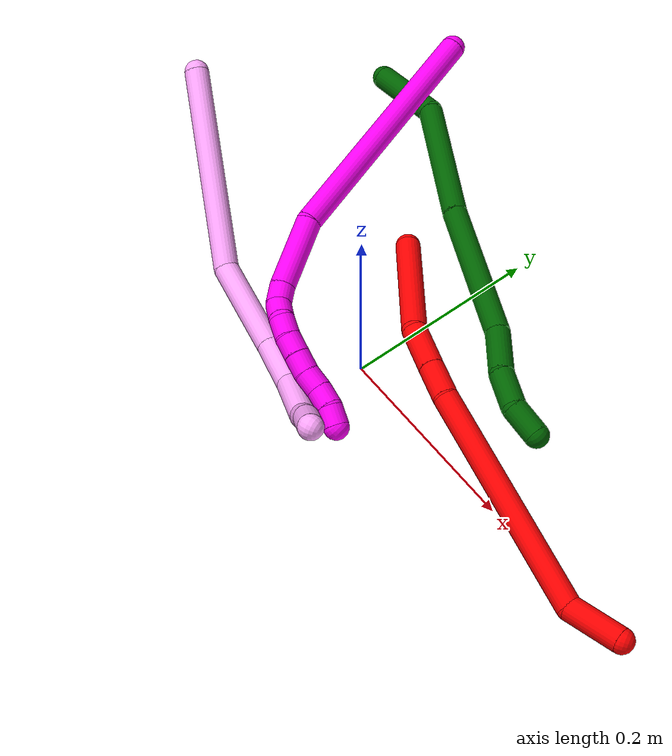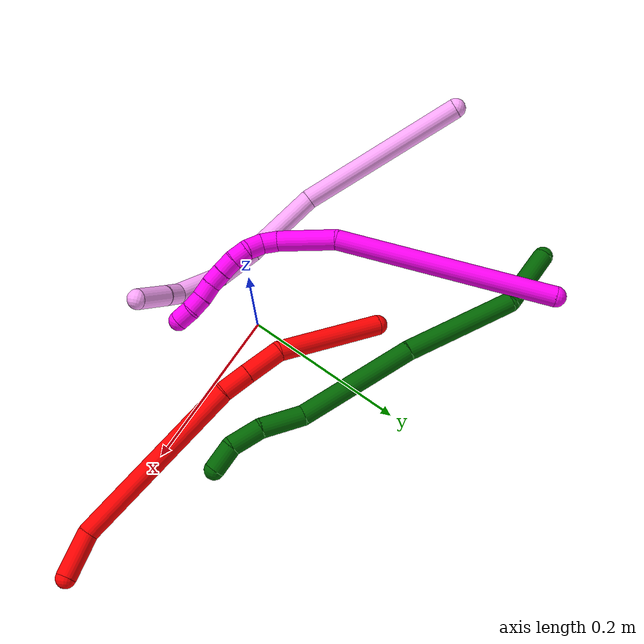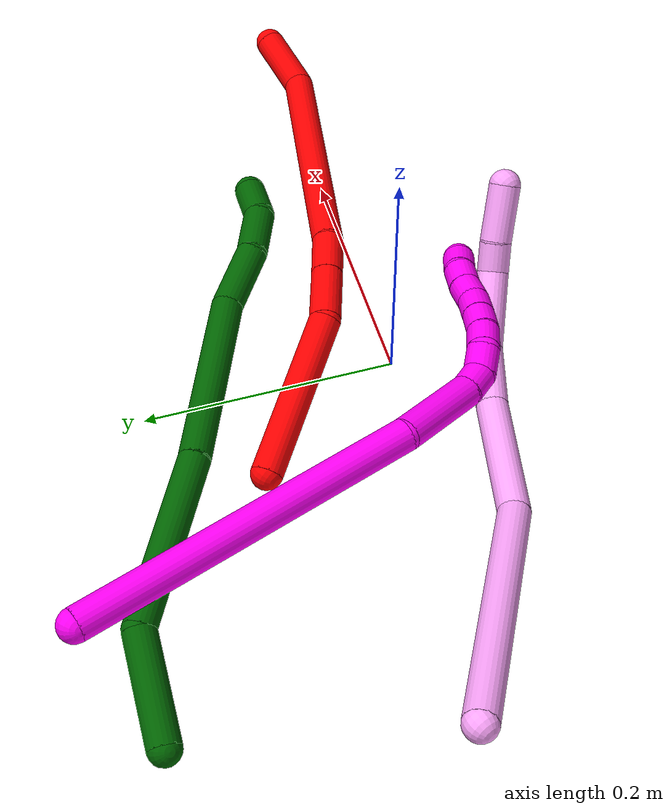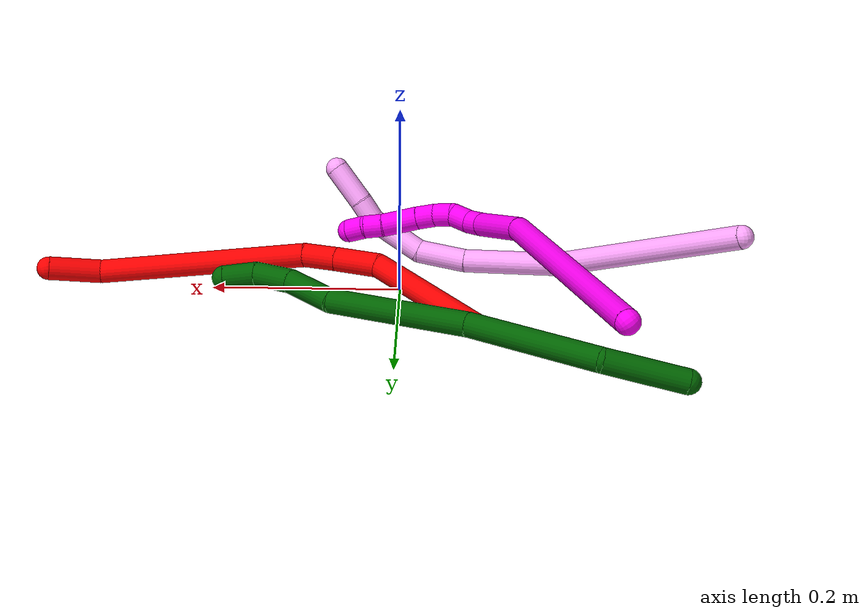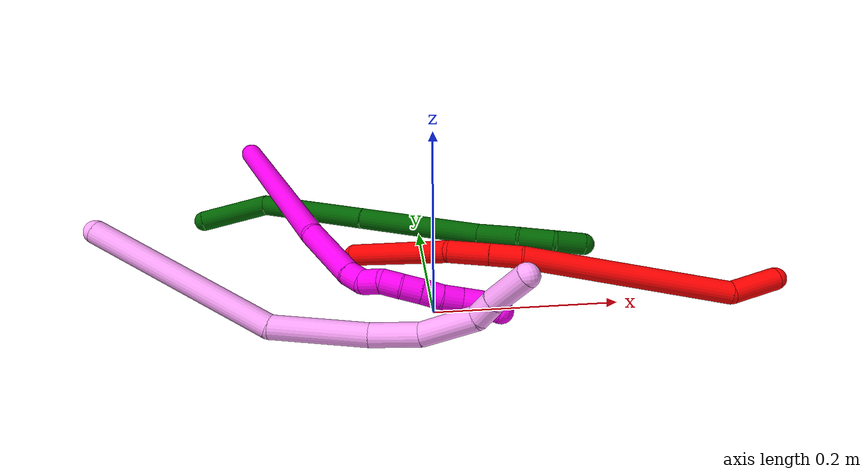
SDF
<sdf version="1.7">
 <world name="default">
  <model name="2">
   <static>0</static>
   <link name="2">
    <collision name="collision-cylinder-e_1_1_4">
     <pose>0.045548 -0.038793 -0.027961 2.19534 0.761074 1.32667</pose>
     <geometry><cylinder><radius>0.0125</radius><length>0.132081</length></cylinder></geometry>
     <surface>
      <friction><ode><mu>1.16</mu><mu2>1.16</mu2><slip1>0</slip1><slip2>0</slip2></ode></friction>
      <contact><ode><kp>1e+06</kp><kd>1</kd><max_vel>0</max_vel><min_depth>0.001</min_depth></ode></contact>
     </surface>
    </collision>
    <visual name="visual-cylinder-e_1_1_4">
     <pose>0.045548 -0.038793 -0.027961 2.19534 0.761074 1.32667</pose>
     <geometry><cylinder><radius>0.0125</radius><length>0.132081</length></cylinder></geometry>
     <material><ambient>1 0 0 1</ambient></material>
    </visual>
    <collision name="collision-cylinder-e_2_4_5">
     <pose>0.10037 -0.091372 -0.071939 2.43087 0.413554 1.02896</pose>
     <geometry><cylinder><radius>0.0125</radius><length>0.046156</length></cylinder></geometry>
     <surface>
      <friction><ode><mu>1.16</mu><mu2>1.16</mu2><slip1>0</slip1><slip2>0</slip2></ode></friction>
      <contact><ode><kp>1e+06</kp><kd>1</kd><max_vel>0</max_vel><min_depth>0.001</min_depth></ode></contact>
     </surface>
    </collision>
    <visual name="visual-cylinder-e_2_4_5">
     <pose>0.10037 -0.091372 -0.071939 2.43087 0.413554 1.02896</pose>
     <geometry><cylinder><radius>0.0125</radius><length>0.046156</length></cylinder></geometry>
     <material><ambient>1 0 0 1</ambient></material>
    </visual>
    <collision name="collision-cylinder-e_3_5_6">
     <pose>0.116458 -0.115717 -0.100481 2.44124 0.394107 1.00051</pose>
     <geometry><cylinder><radius>0.0125</radius><length>0.035487</length></cylinder></geometry>
     <surface>
      <friction><ode><mu>1.16</mu><mu2>1.16</mu2><slip1>0</slip1><slip2>0</slip2></ode></friction>
      <contact><ode><kp>1e+06</kp><kd>1</kd><max_vel>0</max_vel><min_depth>0.001</min_depth></ode></contact>
     </surface>
    </collision>
    <visual name="visual-cylinder-e_3_5_6">
     <pose>0.116458 -0.115717 -0.100481 2.44124 0.394107 1.00051</pose>
     <geometry><cylinder><radius>0.0125</radius><length>0.035487</length></cylinder></geometry>
     <material><ambient>1 0 0 1</ambient></material>
    </visual>
    <collision name="collision-cylinder-e_4_6_7">
     <pose>0.144912 -0.194094 -0.203033 2.49596 0.189698 0.554159</pose>
     <geometry><cylinder><radius>0.0125</radius><length>0.22954</length></cylinder></geometry>
     <surface>
      <friction><ode><mu>1.16</mu><mu2>1.16</mu2><slip1>0</slip1><slip2>0</slip2></ode></friction>
      <contact><ode><kp>1e+06</kp><kd>1</kd><max_vel>0</max_vel><min_depth>0.001</min_depth></ode></contact>
     </surface>
    </collision>
    <visual name="visual-cylinder-e_4_6_7">
     <pose>0.144912 -0.194094 -0.203033 2.49596 0.189698 0.554159</pose>
     <geometry><cylinder><radius>0.0125</radius><length>0.22954</length></cylinder></geometry>
     <material><ambient>1 0 0 1</ambient></material>
    </visual>
    <collision name="collision-cylinder-e_5_7_2">
     <pose>0.173831 -0.266074 -0.320159 2.98923 0.259439 2.08281</pose>
     <geometry><cylinder><radius>0.0125</radius><length>0.056737</length></cylinder></geometry>
     <surface>
      <friction><ode><mu>1.16</mu><mu2>1.16</mu2><slip1>0</slip1><slip2>0</slip2></ode></friction>
      <contact><ode><kp>1e+06</kp><kd>1</kd><max_vel>0</max_vel><min_depth>0.001</min_depth></ode></contact>
     </surface>
    </collision>
    <visual name="visual-cylinder-e_5_7_2">
     <pose>0.173831 -0.266074 -0.320159 2.98923 0.259439 2.08281</pose>
     <geometry><cylinder><radius>0.0125</radius><length>0.056737</length></cylinder></geometry>
     <material><ambient>1 0 0 1</ambient></material>
    </visual>
    <collision name="collision-sphere-2">
     <pose>0.181109 -0.270235 -0.347261 0 -0 0</pose>
     <geometry><sphere><radius>0.0125</radius></sphere></geometry>
     <surface>
      <friction><ode><mu>1.16</mu><mu2>1.16</mu2><slip1>0</slip1><slip2>0</slip2></ode></friction>
      <contact><ode><kp>1e+06</kp><kd>1</kd><max_vel>0</max_vel><min_depth>0.001</min_depth></ode></contact>
     </surface>
    </collision>
    <visual name="visual-sphere-2">
     <pose>0.181109 -0.270235 -0.347261 0 -0 0</pose>
     <geometry><sphere><radius>0.0125</radius></sphere></geometry>
     <material><ambient>1 0 0 1</ambient></material>
    </visual>
    <collision name="collision-sphere-7">
     <pose>0.166553 -0.261913 -0.293058 0 -0 0</pose>
     <geometry><sphere><radius>0.0125</radius></sphere></geometry>
     <surface>
      <friction><ode><mu>1.16</mu><mu2>1.16</mu2><slip1>0</slip1><slip2>0</slip2></ode></friction>
      <contact><ode><kp>1e+06</kp><kd>1</kd><max_vel>0</max_vel><min_depth>0.001</min_depth></ode></contact>
     </surface>
    </collision>
    <visual name="visual-sphere-7">
     <pose>0.166553 -0.261913 -0.293058 0 -0 0</pose>
     <geometry><sphere><radius>0.0125</radius></sphere></geometry>
     <material><ambient>1 0 0 1</ambient></material>
    </visual>
    <collision name="collision-sphere-6">
     <pose>0.123271 -0.126276 -0.113008 0 -0 0</pose>
     <geometry><sphere><radius>0.0125</radius></sphere></geometry>
     <surface>
      <friction><ode><mu>1.16</mu><mu2>1.16</mu2><slip1>0</slip1><slip2>0</slip2></ode></friction>
      <contact><ode><kp>1e+06</kp><kd>1</kd><max_vel>0</max_vel><min_depth>0.001</min_depth></ode></contact>
     </surface>
    </collision>
    <visual name="visual-sphere-6">
     <pose>0.123271 -0.126276 -0.113008 0 -0 0</pose>
     <geometry><sphere><radius>0.0125</radius></sphere></geometry>
     <material><ambient>1 0 0 1</ambient></material>
    </visual>
    <collision name="collision-sphere-5">
     <pose>0.109644 -0.105158 -0.087954 0 -0 0</pose>
     <geometry><sphere><radius>0.0125</radius></sphere></geometry>
     <surface>
      <friction><ode><mu>1.16</mu><mu2>1.16</mu2><slip1>0</slip1><slip2>0</slip2></ode></friction>
      <contact><ode><kp>1e+06</kp><kd>1</kd><max_vel>0</max_vel><min_depth>0.001</min_depth></ode></contact>
     </surface>
    </collision>
    <visual name="visual-sphere-5">
     <pose>0.109644 -0.105158 -0.087954 0 -0 0</pose>
     <geometry><sphere><radius>0.0125</radius></sphere></geometry>
     <material><ambient>1 0 0 1</ambient></material>
    </visual>
    <collision name="collision-sphere-1">
     <geometry><sphere><radius>0.0125</radius></sphere></geometry>
     <surface>
      <friction><ode><mu>1.16</mu><mu2>1.16</mu2><slip1>0</slip1><slip2>0</slip2></ode></friction>
      <contact><ode><kp>1e+06</kp><kd>1</kd><max_vel>0</max_vel><min_depth>0.001</min_depth></ode></contact>
     </surface>
    </collision>
    <visual name="visual-sphere-1">
     <geometry><sphere><radius>0.0125</radius></sphere></geometry>
     <material><ambient>1 0 0 1</ambient></material>
    </visual>
    <collision name="collision-sphere-4">
     <pose>0.091096 -0.077585 -0.055923 0 -0 0</pose>
     <geometry><sphere><radius>0.0125</radius></sphere></geometry>
     <surface>
      <friction><ode><mu>1.16</mu><mu2>1.16</mu2><slip1>0</slip1><slip2>0</slip2></ode></friction>
      <contact><ode><kp>1e+06</kp><kd>1</kd><max_vel>0</max_vel><min_depth>0.001</min_depth></ode></contact>
     </surface>
    </collision>
    <visual name="visual-sphere-4">
     <pose>0.091096 -0.077585 -0.055923 0 -0 0</pose>
     <geometry><sphere><radius>0.0125</radius></sphere></geometry>
     <material><ambient>1 0 0 1</ambient></material>
    </visual>
    <inertial>
     <pose>0.115814 -0.146192 -0.150697 0 -0 0</pose>
     <mass>0.5</mass>
     <inertia>
      <ixx>0.001587</ixx>
      <ixy>0</ixy>
      <ixz>0</ixz>
      <iyy>0.000125</iyy>
      <iyz>0</iyz>
      <izz>0.000363</izz>
     </inertia>
    </inertial>
   </link>
   <pose>-0.082043 0.123573 0.012476 1.5682 -1.00254 -1.08204</pose>
  </model>
  <model name="4">
   <static>0</static>
   <link name="4">
    <collision name="collision-cylinder-e_1_1_4">
     <pose>0.06943 -0.047461 -0.066941 2.52486 0.702227 1.71006</pose>
     <geometry><cylinder><radius>0.0125</radius><length>0.214981</length></cylinder></geometry>
     <surface>
      <friction><ode><mu>1.16</mu><mu2>1.16</mu2><slip1>0</slip1><slip2>0</slip2></ode></friction>
      <contact><ode><kp>1e+06</kp><kd>1</kd><max_vel>0</max_vel><min_depth>0.001</min_depth></ode></contact>
     </surface>
    </collision>
    <visual name="visual-cylinder-e_1_1_4">
     <pose>0.06943 -0.047461 -0.066941 2.52486 0.702227 1.71006</pose>
     <geometry><cylinder><radius>0.0125</radius><length>0.214981</length></cylinder></geometry>
     <material><ambient>1 0.65098 0.996078 1</ambient></material>
    </visual>
    <collision name="collision-cylinder-e_2_4_5">
     <pose>0.164417 -0.101709 -0.176482 2.98358 0.534853 2.579</pose>
     <geometry><cylinder><radius>0.0125</radius><length>0.100276</length></cylinder></geometry>
     <surface>
      <friction><ode><mu>1.16</mu><mu2>1.16</mu2><slip1>0</slip1><slip2>0</slip2></ode></friction>
      <contact><ode><kp>1e+06</kp><kd>1</kd><max_vel>0</max_vel><min_depth>0.001</min_depth></ode></contact>
     </surface>
    </collision>
    <visual name="visual-cylinder-e_2_4_5">
     <pose>0.164417 -0.101709 -0.176482 2.98358 0.534853 2.579</pose>
     <geometry><cylinder><radius>0.0125</radius><length>0.100276</length></cylinder></geometry>
     <material><ambient>1 0.65098 0.996078 1</ambient></material>
    </visual>
    <collision name="collision-cylinder-e_3_5_6">
     <pose>0.205377 -0.108451 -0.240307 -3.13945 0.627764 -3.13498</pose>
     <geometry><cylinder><radius>0.0125</radius><length>0.052455</length></cylinder></geometry>
     <surface>
      <friction><ode><mu>1.16</mu><mu2>1.16</mu2><slip1>0</slip1><slip2>0</slip2></ode></friction>
      <contact><ode><kp>1e+06</kp><kd>1</kd><max_vel>0</max_vel><min_depth>0.001</min_depth></ode></contact>
     </surface>
    </collision>
    <visual name="visual-cylinder-e_3_5_6">
     <pose>0.205377 -0.108451 -0.240307 -3.13945 0.627764 -3.13498</pose>
     <geometry><cylinder><radius>0.0125</radius><length>0.052455</length></cylinder></geometry>
     <material><ambient>1 0.65098 0.996078 1</ambient></material>
    </visual>
    <collision name="collision-cylinder-e_4_6_7">
     <pose>0.242166 -0.097955 -0.281722 -2.6639 0.754846 -2.03996</pose>
     <geometry><cylinder><radius>0.0125</radius><length>0.06242</length></cylinder></geometry>
     <surface>
      <friction><ode><mu>1.16</mu><mu2>1.16</mu2><slip1>0</slip1><slip2>0</slip2></ode></friction>
      <contact><ode><kp>1e+06</kp><kd>1</kd><max_vel>0</max_vel><min_depth>0.001</min_depth></ode></contact>
     </surface>
    </collision>
    <visual name="visual-cylinder-e_4_6_7">
     <pose>0.242166 -0.097955 -0.281722 -2.6639 0.754846 -2.03996</pose>
     <geometry><cylinder><radius>0.0125</radius><length>0.06242</length></cylinder></geometry>
     <material><ambient>1 0.65098 0.996078 1</ambient></material>
    </visual>
    <collision name="collision-cylinder-e_5_7_8">
     <pose>0.27037 -0.078663 -0.30734 -2.12161 0.581462 -0.982394</pose>
     <geometry><cylinder><radius>0.0125</radius><length>0.024832</length></cylinder></geometry>
     <surface>
      <friction><ode><mu>1.16</mu><mu2>1.16</mu2><slip1>0</slip1><slip2>0</slip2></ode></friction>
      <contact><ode><kp>1e+06</kp><kd>1</kd><max_vel>0</max_vel><min_depth>0.001</min_depth></ode></contact>
     </surface>
    </collision>
    <visual name="visual-cylinder-e_5_7_8">
     <pose>0.27037 -0.078663 -0.30734 -2.12161 0.581462 -0.982394</pose>
     <geometry><cylinder><radius>0.0125</radius><length>0.024832</length></cylinder></geometry>
     <material><ambient>1 0.65098 0.996078 1</ambient></material>
    </visual>
    <collision name="collision-cylinder-e_6_8_2">
     <pose>0.291604 -0.055678 -0.322732 -2.18439 0.694688 -1.21845</pose>
     <geometry><cylinder><radius>0.0125</radius><length>0.045036</length></cylinder></geometry>
     <surface>
      <friction><ode><mu>1.16</mu><mu2>1.16</mu2><slip1>0</slip1><slip2>0</slip2></ode></friction>
      <contact><ode><kp>1e+06</kp><kd>1</kd><max_vel>0</max_vel><min_depth>0.001</min_depth></ode></contact>
     </surface>
    </collision>
    <visual name="visual-cylinder-e_6_8_2">
     <pose>0.291604 -0.055678 -0.322732 -2.18439 0.694688 -1.21845</pose>
     <geometry><cylinder><radius>0.0125</radius><length>0.045036</length></cylinder></geometry>
     <material><ambient>1 0.65098 0.996078 1</ambient></material>
    </visual>
    <collision name="collision-sphere-2">
     <pose>0.306018 -0.041534 -0.332693 0 -0 0</pose>
     <geometry><sphere><radius>0.0125</radius></sphere></geometry>
     <surface>
      <friction><ode><mu>1.16</mu><mu2>1.16</mu2><slip1>0</slip1><slip2>0</slip2></ode></friction>
      <contact><ode><kp>1e+06</kp><kd>1</kd><max_vel>0</max_vel><min_depth>0.001</min_depth></ode></contact>
     </surface>
    </collision>
    <visual name="visual-sphere-2">
     <pose>0.306018 -0.041534 -0.332693 0 -0 0</pose>
     <geometry><sphere><radius>0.0125</radius></sphere></geometry>
     <material><ambient>1 0.65098 0.996078 1</ambient></material>
    </visual>
    <collision name="collision-sphere-4">
     <pose>0.138861 -0.094921 -0.133883 0 -0 0</pose>
     <geometry><sphere><radius>0.0125</radius></sphere></geometry>
     <surface>
      <friction><ode><mu>1.16</mu><mu2>1.16</mu2><slip1>0</slip1><slip2>0</slip2></ode></friction>
      <contact><ode><kp>1e+06</kp><kd>1</kd><max_vel>0</max_vel><min_depth>0.001</min_depth></ode></contact>
     </surface>
    </collision>
    <visual name="visual-sphere-4">
     <pose>0.138861 -0.094921 -0.133883 0 -0 0</pose>
     <geometry><sphere><radius>0.0125</radius></sphere></geometry>
     <material><ambient>1 0.65098 0.996078 1</ambient></material>
    </visual>
    <collision name="collision-sphere-1">
     <geometry><sphere><radius>0.0125</radius></sphere></geometry>
     <surface>
      <friction><ode><mu>1.16</mu><mu2>1.16</mu2><slip1>0</slip1><slip2>0</slip2></ode></friction>
      <contact><ode><kp>1e+06</kp><kd>1</kd><max_vel>0</max_vel><min_depth>0.001</min_depth></ode></contact>
     </surface>
    </collision>
    <visual name="visual-sphere-1">
     <geometry><sphere><radius>0.0125</radius></sphere></geometry>
     <material><ambient>1 0.65098 0.996078 1</ambient></material>
    </visual>
    <collision name="collision-sphere-8">
     <pose>0.277189 -0.069822 -0.31277 0 -0 0</pose>
     <geometry><sphere><radius>0.0125</radius></sphere></geometry>
     <surface>
      <friction><ode><mu>1.16</mu><mu2>1.16</mu2><slip1>0</slip1><slip2>0</slip2></ode></friction>
      <contact><ode><kp>1e+06</kp><kd>1</kd><max_vel>0</max_vel><min_depth>0.001</min_depth></ode></contact>
     </surface>
    </collision>
    <visual name="visual-sphere-8">
     <pose>0.277189 -0.069822 -0.31277 0 -0 0</pose>
     <geometry><sphere><radius>0.0125</radius></sphere></geometry>
     <material><ambient>1 0.65098 0.996078 1</ambient></material>
    </visual>
    <collision name="collision-sphere-5">
     <pose>0.189973 -0.108497 -0.21908 0 -0 0</pose>
     <geometry><sphere><radius>0.0125</radius></sphere></geometry>
     <surface>
      <friction><ode><mu>1.16</mu><mu2>1.16</mu2><slip1>0</slip1><slip2>0</slip2></ode></friction>
      <contact><ode><kp>1e+06</kp><kd>1</kd><max_vel>0</max_vel><min_depth>0.001</min_depth></ode></contact>
     </surface>
    </collision>
    <visual name="visual-sphere-5">
     <pose>0.189973 -0.108497 -0.21908 0 -0 0</pose>
     <geometry><sphere><radius>0.0125</radius></sphere></geometry>
     <material><ambient>1 0.65098 0.996078 1</ambient></material>
    </visual>
    <collision name="collision-sphere-6">
     <pose>0.220781 -0.108406 -0.261534 0 -0 0</pose>
     <geometry><sphere><radius>0.0125</radius></sphere></geometry>
     <surface>
      <friction><ode><mu>1.16</mu><mu2>1.16</mu2><slip1>0</slip1><slip2>0</slip2></ode></friction>
      <contact><ode><kp>1e+06</kp><kd>1</kd><max_vel>0</max_vel><min_depth>0.001</min_depth></ode></contact>
     </surface>
    </collision>
    <visual name="visual-sphere-6">
     <pose>0.220781 -0.108406 -0.261534 0 -0 0</pose>
     <geometry><sphere><radius>0.0125</radius></sphere></geometry>
     <material><ambient>1 0.65098 0.996078 1</ambient></material>
    </visual>
    <collision name="collision-sphere-7">
     <pose>0.26355 -0.087504 -0.30191 0 -0 0</pose>
     <geometry><sphere><radius>0.0125</radius></sphere></geometry>
     <surface>
      <friction><ode><mu>1.16</mu><mu2>1.16</mu2><slip1>0</slip1><slip2>0</slip2></ode></friction>
      <contact><ode><kp>1e+06</kp><kd>1</kd><max_vel>0</max_vel><min_depth>0.001</min_depth></ode></contact>
     </surface>
    </collision>
    <visual name="visual-sphere-7">
     <pose>0.26355 -0.087504 -0.30191 0 -0 0</pose>
     <geometry><sphere><radius>0.0125</radius></sphere></geometry>
     <material><ambient>1 0.65098 0.996078 1</ambient></material>
    </visual>
    <inertial>
     <pose>0.154297 -0.073332 -0.168889 0 -0 0</pose>
     <mass>0.5</mass>
     <inertia>
      <ixx>0.000505</ixx>
      <ixy>0</ixy>
      <ixz>0</ixz>
      <iyy>0.00116</iyy>
      <iyz>0</iyz>
      <izz>-0.000276</izz>
     </inertia>
    </inertial>
   </link>
   <pose>-0.347768 0.055142 0.086393 1.56895 -0.174569 -1.20448</pose>
  </model>
  <model name="6">
   <static>0</static>
   <link name="6">
    <collision name="collision-cylinder-e_1_1_4">
     <pose>0.032677 -0.018442 -0.017619 2.33339 0.908031 1.70249</pose>
     <geometry><cylinder><radius>0.0125</radius><length>0.082906</length></cylinder></geometry>
     <surface>
      <friction><ode><mu>1.16</mu><mu2>1.16</mu2><slip1>0</slip1><slip2>0</slip2></ode></friction>
      <contact><ode><kp>1e+06</kp><kd>1</kd><max_vel>0</max_vel><min_depth>0.001</min_depth></ode></contact>
     </surface>
    </collision>
    <visual name="visual-cylinder-e_1_1_4">
     <pose>0.032677 -0.018442 -0.017619 2.33339 0.908031 1.70249</pose>
     <geometry><cylinder><radius>0.0125</radius><length>0.082906</length></cylinder></geometry>
     <material><ambient>0 0.392157 0.003922 1</ambient></material>
    </visual>
    <collision name="collision-cylinder-e_2_4_5">
     <pose>0.095285 -0.093743 -0.064017 2.03934 0.439099 0.696495</pose>
     <geometry><cylinder><radius>0.0125</radius><length>0.140812</length></cylinder></geometry>
     <surface>
      <friction><ode><mu>1.16</mu><mu2>1.16</mu2><slip1>0</slip1><slip2>0</slip2></ode></friction>
      <contact><ode><kp>1e+06</kp><kd>1</kd><max_vel>0</max_vel><min_depth>0.001</min_depth></ode></contact>
     </surface>
    </collision>
    <visual name="visual-cylinder-e_2_4_5">
     <pose>0.095285 -0.093743 -0.064017 2.03934 0.439099 0.696495</pose>
     <geometry><cylinder><radius>0.0125</radius><length>0.140812</length></cylinder></geometry>
     <material><ambient>0 0.392157 0.003922 1</ambient></material>
    </visual>
    <collision name="collision-cylinder-e_3_5_6">
     <pose>0.159269 -0.205966 -0.129349 2.15433 0.474214 0.844238</pose>
     <geometry><cylinder><radius>0.0125</radius><length>0.149143</length></cylinder></geometry>
     <surface>
      <friction><ode><mu>1.16</mu><mu2>1.16</mu2><slip1>0</slip1><slip2>0</slip2></ode></friction>
      <contact><ode><kp>1e+06</kp><kd>1</kd><max_vel>0</max_vel><min_depth>0.001</min_depth></ode></contact>
     </surface>
    </collision>
    <visual name="visual-cylinder-e_3_5_6">
     <pose>0.159269 -0.205966 -0.129349 2.15433 0.474214 0.844238</pose>
     <geometry><cylinder><radius>0.0125</radius><length>0.149143</length></cylinder></geometry>
     <material><ambient>0 0.392157 0.003922 1</ambient></material>
    </visual>
    <collision name="collision-cylinder-e_4_6_7">
     <pose>0.20428 -0.284726 -0.17254 1.84725 0.423357 0.554074</pose>
     <geometry><cylinder><radius>0.0125</radius><length>0.053349</length></cylinder></geometry>
     <surface>
      <friction><ode><mu>1.16</mu><mu2>1.16</mu2><slip1>0</slip1><slip2>0</slip2></ode></friction>
      <contact><ode><kp>1e+06</kp><kd>1</kd><max_vel>0</max_vel><min_depth>0.001</min_depth></ode></contact>
     </surface>
    </collision>
    <visual name="visual-cylinder-e_4_6_7">
     <pose>0.20428 -0.284726 -0.17254 1.84725 0.423357 0.554074</pose>
     <geometry><cylinder><radius>0.0125</radius><length>0.053349</length></cylinder></geometry>
     <material><ambient>0 0.392157 0.003922 1</ambient></material>
    </visual>
    <collision name="collision-cylinder-e_5_7_8">
     <pose>0.224913 -0.323005 -0.188406 2.12586 0.504734 0.86775</pose>
     <geometry><cylinder><radius>0.0125</radius><length>0.040013</length></cylinder></geometry>
     <surface>
      <friction><ode><mu>1.16</mu><mu2>1.16</mu2><slip1>0</slip1><slip2>0</slip2></ode></friction>
      <contact><ode><kp>1e+06</kp><kd>1</kd><max_vel>0</max_vel><min_depth>0.001</min_depth></ode></contact>
     </surface>
    </collision>
    <visual name="visual-cylinder-e_5_7_8">
     <pose>0.224913 -0.323005 -0.188406 2.12586 0.504734 0.86775</pose>
     <geometry><cylinder><radius>0.0125</radius><length>0.040013</length></cylinder></geometry>
     <material><ambient>0 0.392157 0.003922 1</ambient></material>
    </visual>
    <collision name="collision-cylinder-e_6_8_2">
     <pose>0.24387 -0.345079 -0.209774 2.60674 0.581884 1.65949</pose>
     <geometry><cylinder><radius>0.0125</radius><length>0.033778</length></cylinder></geometry>
     <surface>
      <friction><ode><mu>1.16</mu><mu2>1.16</mu2><slip1>0</slip1><slip2>0</slip2></ode></friction>
      <contact><ode><kp>1e+06</kp><kd>1</kd><max_vel>0</max_vel><min_depth>0.001</min_depth></ode></contact>
     </surface>
    </collision>
    <visual name="visual-cylinder-e_6_8_2">
     <pose>0.24387 -0.345079 -0.209774 2.60674 0.581884 1.65949</pose>
     <geometry><cylinder><radius>0.0125</radius><length>0.033778</length></cylinder></geometry>
     <material><ambient>0 0.392157 0.003922 1</ambient></material>
    </visual>
    <collision name="collision-sphere-2">
     <pose>0.253152 -0.352271 -0.221913 0 -0 0</pose>
     <geometry><sphere><radius>0.0125</radius></sphere></geometry>
     <surface>
      <friction><ode><mu>1.16</mu><mu2>1.16</mu2><slip1>0</slip1><slip2>0</slip2></ode></friction>
      <contact><ode><kp>1e+06</kp><kd>1</kd><max_vel>0</max_vel><min_depth>0.001</min_depth></ode></contact>
     </surface>
    </collision>
    <visual name="visual-sphere-2">
     <pose>0.253152 -0.352271 -0.221913 0 -0 0</pose>
     <geometry><sphere><radius>0.0125</radius></sphere></geometry>
     <material><ambient>0 0.392157 0.003922 1</ambient></material>
    </visual>
    <collision name="collision-sphere-4">
     <pose>0.065354 -0.036884 -0.035239 0 -0 0</pose>
     <geometry><sphere><radius>0.0125</radius></sphere></geometry>
     <surface>
      <friction><ode><mu>1.16</mu><mu2>1.16</mu2><slip1>0</slip1><slip2>0</slip2></ode></friction>
      <contact><ode><kp>1e+06</kp><kd>1</kd><max_vel>0</max_vel><min_depth>0.001</min_depth></ode></contact>
     </surface>
    </collision>
    <visual name="visual-sphere-4">
     <pose>0.065354 -0.036884 -0.035239 0 -0 0</pose>
     <geometry><sphere><radius>0.0125</radius></sphere></geometry>
     <material><ambient>0 0.392157 0.003922 1</ambient></material>
    </visual>
    <collision name="collision-sphere-1">
     <geometry><sphere><radius>0.0125</radius></sphere></geometry>
     <surface>
      <friction><ode><mu>1.16</mu><mu2>1.16</mu2><slip1>0</slip1><slip2>0</slip2></ode></friction>
      <contact><ode><kp>1e+06</kp><kd>1</kd><max_vel>0</max_vel><min_depth>0.001</min_depth></ode></contact>
     </surface>
    </collision>
    <visual name="visual-sphere-1">
     <geometry><sphere><radius>0.0125</radius></sphere></geometry>
     <material><ambient>0 0.392157 0.003922 1</ambient></material>
    </visual>
    <collision name="collision-sphere-8">
     <pose>0.234587 -0.337887 -0.197635 0 -0 0</pose>
     <geometry><sphere><radius>0.0125</radius></sphere></geometry>
     <surface>
      <friction><ode><mu>1.16</mu><mu2>1.16</mu2><slip1>0</slip1><slip2>0</slip2></ode></friction>
      <contact><ode><kp>1e+06</kp><kd>1</kd><max_vel>0</max_vel><min_depth>0.001</min_depth></ode></contact>
     </surface>
    </collision>
    <visual name="visual-sphere-8">
     <pose>0.234587 -0.337887 -0.197635 0 -0 0</pose>
     <geometry><sphere><radius>0.0125</radius></sphere></geometry>
     <material><ambient>0 0.392157 0.003922 1</ambient></material>
    </visual>
    <collision name="collision-sphere-5">
     <pose>0.125217 -0.150602 -0.092796 0 -0 0</pose>
     <geometry><sphere><radius>0.0125</radius></sphere></geometry>
     <surface>
      <friction><ode><mu>1.16</mu><mu2>1.16</mu2><slip1>0</slip1><slip2>0</slip2></ode></friction>
      <contact><ode><kp>1e+06</kp><kd>1</kd><max_vel>0</max_vel><min_depth>0.001</min_depth></ode></contact>
     </surface>
    </collision>
    <visual name="visual-sphere-5">
     <pose>0.125217 -0.150602 -0.092796 0 -0 0</pose>
     <geometry><sphere><radius>0.0125</radius></sphere></geometry>
     <material><ambient>0 0.392157 0.003922 1</ambient></material>
    </visual>
    <collision name="collision-sphere-6">
     <pose>0.193321 -0.26133 -0.165902 0 -0 0</pose>
     <geometry><sphere><radius>0.0125</radius></sphere></geometry>
     <surface>
      <friction><ode><mu>1.16</mu><mu2>1.16</mu2><slip1>0</slip1><slip2>0</slip2></ode></friction>
      <contact><ode><kp>1e+06</kp><kd>1</kd><max_vel>0</max_vel><min_depth>0.001</min_depth></ode></contact>
     </surface>
    </collision>
    <visual name="visual-sphere-6">
     <pose>0.193321 -0.26133 -0.165902 0 -0 0</pose>
     <geometry><sphere><radius>0.0125</radius></sphere></geometry>
     <material><ambient>0 0.392157 0.003922 1</ambient></material>
    </visual>
    <collision name="collision-sphere-7">
     <pose>0.215238 -0.308122 -0.179178 0 -0 0</pose>
     <geometry><sphere><radius>0.0125</radius></sphere></geometry>
     <surface>
      <friction><ode><mu>1.16</mu><mu2>1.16</mu2><slip1>0</slip1><slip2>0</slip2></ode></friction>
      <contact><ode><kp>1e+06</kp><kd>1</kd><max_vel>0</max_vel><min_depth>0.001</min_depth></ode></contact>
     </surface>
    </collision>
    <visual name="visual-sphere-7">
     <pose>0.215238 -0.308122 -0.179178 0 -0 0</pose>
     <geometry><sphere><radius>0.0125</radius></sphere></geometry>
     <material><ambient>0 0.392157 0.003922 1</ambient></material>
    </visual>
    <inertial>
     <pose>0.13603 -0.170435 -0.107192 0 -0 0</pose>
     <mass>0.5</mass>
     <inertia>
      <ixx>0.000735</ixx>
      <ixy>0</ixy>
      <ixz>0</ixz>
      <iyy>0.000332</iyy>
      <iyz>0</iyz>
      <izz>0.000145</izz>
     </inertia>
    </inertial>
   </link>
   <pose>-0.274851 0.244439 0.013411 -0.090306 -0.723849 0.495674</pose>
  </model>
  <model name="10">
   <static>0</static>
   <link name="10">
    <collision name="collision-cylinder-e_1_1_4">
     <pose>0.051598 -0.122791 -0.00495 1.61109 0.397516 0.41341</pose>
     <geometry><cylinder><radius>0.0125</radius><length>0.266568</length></cylinder></geometry>
     <surface>
      <friction><ode><mu>1.16</mu><mu2>1.16</mu2><slip1>0</slip1><slip2>0</slip2></ode></friction>
      <contact><ode><kp>1e+06</kp><kd>1</kd><max_vel>0</max_vel><min_depth>0.001</min_depth></ode></contact>
     </surface>
    </collision>
    <visual name="visual-cylinder-e_1_1_4">
     <pose>0.051598 -0.122791 -0.00495 1.61109 0.397516 0.41341</pose>
     <geometry><cylinder><radius>0.0125</radius><length>0.266568</length></cylinder></geometry>
     <material><ambient>1 0 0.964706 1</ambient></material>
    </visual>
    <collision name="collision-cylinder-e_2_4_5">
     <pose>0.114005 -0.277844 -0.021728 1.92222 0.304771 0.432873</pose>
     <geometry><cylinder><radius>0.0125</radius><length>0.072043</length></cylinder></geometry>
     <surface>
      <friction><ode><mu>1.16</mu><mu2>1.16</mu2><slip1>0</slip1><slip2>0</slip2></ode></friction>
      <contact><ode><kp>1e+06</kp><kd>1</kd><max_vel>0</max_vel><min_depth>0.001</min_depth></ode></contact>
     </surface>
    </collision>
    <visual name="visual-cylinder-e_2_4_5">
     <pose>0.114005 -0.277844 -0.021728 1.92222 0.304771 0.432873</pose>
     <geometry><cylinder><radius>0.0125</radius><length>0.072043</length></cylinder></geometry>
     <material><ambient>1 0 0.964706 1</ambient></material>
    </visual>
    <collision name="collision-cylinder-e_3_5_6">
     <pose>0.129618 -0.318116 -0.037816 2.0595 0.486975 0.784074</pose>
     <geometry><cylinder><radius>0.0125</radius><length>0.020533</length></cylinder></geometry>
     <surface>
      <friction><ode><mu>1.16</mu><mu2>1.16</mu2><slip1>0</slip1><slip2>0</slip2></ode></friction>
      <contact><ode><kp>1e+06</kp><kd>1</kd><max_vel>0</max_vel><min_depth>0.001</min_depth></ode></contact>
     </surface>
    </collision>
    <visual name="visual-cylinder-e_3_5_6">
     <pose>0.129618 -0.318116 -0.037816 2.0595 0.486975 0.784074</pose>
     <geometry><cylinder><radius>0.0125</radius><length>0.020533</length></cylinder></geometry>
     <material><ambient>1 0 0.964706 1</ambient></material>
    </visual>
    <collision name="collision-cylinder-e_4_6_7">
     <pose>0.142571 -0.330395 -0.046916 2.41891 0.901005 1.81502</pose>
     <geometry><cylinder><radius>0.0125</radius><length>0.020789</length></cylinder></geometry>
     <surface>
      <friction><ode><mu>1.16</mu><mu2>1.16</mu2><slip1>0</slip1><slip2>0</slip2></ode></friction>
      <contact><ode><kp>1e+06</kp><kd>1</kd><max_vel>0</max_vel><min_depth>0.001</min_depth></ode></contact>
     </surface>
    </collision>
    <visual name="visual-cylinder-e_4_6_7">
     <pose>0.142571 -0.330395 -0.046916 2.41891 0.901005 1.81502</pose>
     <geometry><cylinder><radius>0.0125</radius><length>0.020789</length></cylinder></geometry>
     <material><ambient>1 0 0.964706 1</ambient></material>
    </visual>
    <collision name="collision-cylinder-e_5_7_8">
     <pose>0.155752 -0.339007 -0.059266 2.61725 0.525647 1.5734</pose>
     <geometry><cylinder><radius>0.0125</radius><length>0.020058</length></cylinder></geometry>
     <surface>
      <friction><ode><mu>1.16</mu><mu2>1.16</mu2><slip1>0</slip1><slip2>0</slip2></ode></friction>
      <contact><ode><kp>1e+06</kp><kd>1</kd><max_vel>0</max_vel><min_depth>0.001</min_depth></ode></contact>
     </surface>
    </collision>
    <visual name="visual-cylinder-e_5_7_8">
     <pose>0.155752 -0.339007 -0.059266 2.61725 0.525647 1.5734</pose>
     <geometry><cylinder><radius>0.0125</radius><length>0.020058</length></cylinder></geometry>
     <material><ambient>1 0 0.964706 1</ambient></material>
    </visual>
    <collision name="collision-cylinder-e_6_8_9">
     <pose>0.165046 -0.34648 -0.075267 2.78841 0.440049 1.79465</pose>
     <geometry><cylinder><radius>0.0125</radius><length>0.020005</length></cylinder></geometry>
     <surface>
      <friction><ode><mu>1.16</mu><mu2>1.16</mu2><slip1>0</slip1><slip2>0</slip2></ode></friction>
      <contact><ode><kp>1e+06</kp><kd>1</kd><max_vel>0</max_vel><min_depth>0.001</min_depth></ode></contact>
     </surface>
    </collision>
    <visual name="visual-cylinder-e_6_8_9">
     <pose>0.165046 -0.34648 -0.075267 2.78841 0.440049 1.79465</pose>
     <geometry><cylinder><radius>0.0125</radius><length>0.020005</length></cylinder></geometry>
     <material><ambient>1 0 0.964706 1</ambient></material>
    </visual>
    <collision name="collision-cylinder-e_7_9_10">
     <pose>0.173047 -0.352718 -0.092497 2.79994 0.383298 1.68811</pose>
     <geometry><cylinder><radius>0.0125</radius><length>0.020003</length></cylinder></geometry>
     <surface>
      <friction><ode><mu>1.16</mu><mu2>1.16</mu2><slip1>0</slip1><slip2>0</slip2></ode></friction>
      <contact><ode><kp>1e+06</kp><kd>1</kd><max_vel>0</max_vel><min_depth>0.001</min_depth></ode></contact>
     </surface>
    </collision>
    <visual name="visual-cylinder-e_7_9_10">
     <pose>0.173047 -0.352718 -0.092497 2.79994 0.383298 1.68811</pose>
     <geometry><cylinder><radius>0.0125</radius><length>0.020003</length></cylinder></geometry>
     <material><ambient>1 0 0.964706 1</ambient></material>
    </visual>
    <collision name="collision-cylinder-e_8_10_11">
     <pose>0.180827 -0.357268 -0.110271 2.98325 0.415854 2.42221</pose>
     <geometry><cylinder><radius>0.0125</radius><length>0.020001</length></cylinder></geometry>
     <surface>
      <friction><ode><mu>1.16</mu><mu2>1.16</mu2><slip1>0</slip1><slip2>0</slip2></ode></friction>
      <contact><ode><kp>1e+06</kp><kd>1</kd><max_vel>0</max_vel><min_depth>0.001</min_depth></ode></contact>
     </surface>
    </collision>
    <visual name="visual-cylinder-e_8_10_11">
     <pose>0.180827 -0.357268 -0.110271 2.98325 0.415854 2.42221</pose>
     <geometry><cylinder><radius>0.0125</radius><length>0.020001</length></cylinder></geometry>
     <material><ambient>1 0 0.964706 1</ambient></material>
    </visual>
    <collision name="collision-cylinder-e_9_11_12">
     <pose>0.189719 -0.361196 -0.127688 2.85344 0.506552 2.11984</pose>
     <geometry><cylinder><radius>0.0125</radius><length>0.02</length></cylinder></geometry>
     <surface>
      <friction><ode><mu>1.16</mu><mu2>1.16</mu2><slip1>0</slip1><slip2>0</slip2></ode></friction>
      <contact><ode><kp>1e+06</kp><kd>1</kd><max_vel>0</max_vel><min_depth>0.001</min_depth></ode></contact>
     </surface>
    </collision>
    <visual name="visual-cylinder-e_9_11_12">
     <pose>0.189719 -0.361196 -0.127688 2.85344 0.506552 2.11984</pose>
     <geometry><cylinder><radius>0.0125</radius><length>0.02</length></cylinder></geometry>
     <material><ambient>1 0 0.964706 1</ambient></material>
    </visual>
    <collision name="collision-cylinder-e_10_12_2">
     <pose>0.197902 -0.368188 -0.144353 2.64313 0.339639 1.18571</pose>
     <geometry><cylinder><radius>0.0125</radius><length>0.020001</length></cylinder></geometry>
     <surface>
      <friction><ode><mu>1.16</mu><mu2>1.16</mu2><slip1>0</slip1><slip2>0</slip2></ode></friction>
      <contact><ode><kp>1e+06</kp><kd>1</kd><max_vel>0</max_vel><min_depth>0.001</min_depth></ode></contact>
     </surface>
    </collision>
    <visual name="visual-cylinder-e_10_12_2">
     <pose>0.197902 -0.368188 -0.144353 2.64313 0.339639 1.18571</pose>
     <geometry><cylinder><radius>0.0125</radius><length>0.020001</length></cylinder></geometry>
     <material><ambient>1 0 0.964706 1</ambient></material>
    </visual>
    <collision name="collision-sphere-2">
     <pose>0.201234 -0.372696 -0.152635 0 -0 0</pose>
     <geometry><sphere><radius>0.0125</radius></sphere></geometry>
     <surface>
      <friction><ode><mu>1.16</mu><mu2>1.16</mu2><slip1>0</slip1><slip2>0</slip2></ode></friction>
      <contact><ode><kp>1e+06</kp><kd>1</kd><max_vel>0</max_vel><min_depth>0.001</min_depth></ode></contact>
     </surface>
    </collision>
    <visual name="visual-sphere-2">
     <pose>0.201234 -0.372696 -0.152635 0 -0 0</pose>
     <geometry><sphere><radius>0.0125</radius></sphere></geometry>
     <material><ambient>1 0 0.964706 1</ambient></material>
    </visual>
    <collision name="collision-sphere-12">
     <pose>0.19457 -0.36368 -0.136072 0 -0 0</pose>
     <geometry><sphere><radius>0.0125</radius></sphere></geometry>
     <surface>
      <friction><ode><mu>1.16</mu><mu2>1.16</mu2><slip1>0</slip1><slip2>0</slip2></ode></friction>
      <contact><ode><kp>1e+06</kp><kd>1</kd><max_vel>0</max_vel><min_depth>0.001</min_depth></ode></contact>
     </surface>
    </collision>
    <visual name="visual-sphere-12">
     <pose>0.19457 -0.36368 -0.136072 0 -0 0</pose>
     <geometry><sphere><radius>0.0125</radius></sphere></geometry>
     <material><ambient>1 0 0.964706 1</ambient></material>
    </visual>
    <collision name="collision-sphere-11">
     <pose>0.184867 -0.358711 -0.119304 0 -0 0</pose>
     <geometry><sphere><radius>0.0125</radius></sphere></geometry>
     <surface>
      <friction><ode><mu>1.16</mu><mu2>1.16</mu2><slip1>0</slip1><slip2>0</slip2></ode></friction>
      <contact><ode><kp>1e+06</kp><kd>1</kd><max_vel>0</max_vel><min_depth>0.001</min_depth></ode></contact>
     </surface>
    </collision>
    <visual name="visual-sphere-11">
     <pose>0.184867 -0.358711 -0.119304 0 -0 0</pose>
     <geometry><sphere><radius>0.0125</radius></sphere></geometry>
     <material><ambient>1 0 0.964706 1</ambient></material>
    </visual>
    <collision name="collision-sphere-10">
     <pose>0.176787 -0.355826 -0.101237 0 -0 0</pose>
     <geometry><sphere><radius>0.0125</radius></sphere></geometry>
     <surface>
      <friction><ode><mu>1.16</mu><mu2>1.16</mu2><slip1>0</slip1><slip2>0</slip2></ode></friction>
      <contact><ode><kp>1e+06</kp><kd>1</kd><max_vel>0</max_vel><min_depth>0.001</min_depth></ode></contact>
     </surface>
    </collision>
    <visual name="visual-sphere-10">
     <pose>0.176787 -0.355826 -0.101237 0 -0 0</pose>
     <geometry><sphere><radius>0.0125</radius></sphere></geometry>
     <material><ambient>1 0 0.964706 1</ambient></material>
    </visual>
    <collision name="collision-sphere-9">
     <pose>0.169307 -0.34961 -0.083758 0 -0 0</pose>
     <geometry><sphere><radius>0.0125</radius></sphere></geometry>
     <surface>
      <friction><ode><mu>1.16</mu><mu2>1.16</mu2><slip1>0</slip1><slip2>0</slip2></ode></friction>
      <contact><ode><kp>1e+06</kp><kd>1</kd><max_vel>0</max_vel><min_depth>0.001</min_depth></ode></contact>
     </surface>
    </collision>
    <visual name="visual-sphere-9">
     <pose>0.169307 -0.34961 -0.083758 0 -0 0</pose>
     <geometry><sphere><radius>0.0125</radius></sphere></geometry>
     <material><ambient>1 0 0.964706 1</ambient></material>
    </visual>
    <collision name="collision-sphere-4">
     <pose>0.103196 -0.245583 -0.0099 0 -0 0</pose>
     <geometry><sphere><radius>0.0125</radius></sphere></geometry>
     <surface>
      <friction><ode><mu>1.16</mu><mu2>1.16</mu2><slip1>0</slip1><slip2>0</slip2></ode></friction>
      <contact><ode><kp>1e+06</kp><kd>1</kd><max_vel>0</max_vel><min_depth>0.001</min_depth></ode></contact>
     </surface>
    </collision>
    <visual name="visual-sphere-4">
     <pose>0.103196 -0.245583 -0.0099 0 -0 0</pose>
     <geometry><sphere><radius>0.0125</radius></sphere></geometry>
     <material><ambient>1 0 0.964706 1</ambient></material>
    </visual>
    <collision name="collision-sphere-1">
     <geometry><sphere><radius>0.0125</radius></sphere></geometry>
     <surface>
      <friction><ode><mu>1.16</mu><mu2>1.16</mu2><slip1>0</slip1><slip2>0</slip2></ode></friction>
      <contact><ode><kp>1e+06</kp><kd>1</kd><max_vel>0</max_vel><min_depth>0.001</min_depth></ode></contact>
     </surface>
    </collision>
    <visual name="visual-sphere-1">
     <geometry><sphere><radius>0.0125</radius></sphere></geometry>
     <material><ambient>1 0 0.964706 1</ambient></material>
    </visual>
    <collision name="collision-sphere-8">
     <pose>0.160785 -0.34335 -0.066776 0 -0 0</pose>
     <geometry><sphere><radius>0.0125</radius></sphere></geometry>
     <surface>
      <friction><ode><mu>1.16</mu><mu2>1.16</mu2><slip1>0</slip1><slip2>0</slip2></ode></friction>
      <contact><ode><kp>1e+06</kp><kd>1</kd><max_vel>0</max_vel><min_depth>0.001</min_depth></ode></contact>
     </surface>
    </collision>
    <visual name="visual-sphere-8">
     <pose>0.160785 -0.34335 -0.066776 0 -0 0</pose>
     <geometry><sphere><radius>0.0125</radius></sphere></geometry>
     <material><ambient>1 0 0.964706 1</ambient></material>
    </visual>
    <collision name="collision-sphere-5">
     <pose>0.124814 -0.310105 -0.033557 0 -0 0</pose>
     <geometry><sphere><radius>0.0125</radius></sphere></geometry>
     <surface>
      <friction><ode><mu>1.16</mu><mu2>1.16</mu2><slip1>0</slip1><slip2>0</slip2></ode></friction>
      <contact><ode><kp>1e+06</kp><kd>1</kd><max_vel>0</max_vel><min_depth>0.001</min_depth></ode></contact>
     </surface>
    </collision>
    <visual name="visual-sphere-5">
     <pose>0.124814 -0.310105 -0.033557 0 -0 0</pose>
     <geometry><sphere><radius>0.0125</radius></sphere></geometry>
     <material><ambient>1 0 0.964706 1</ambient></material>
    </visual>
    <collision name="collision-sphere-6">
     <pose>0.134423 -0.326127 -0.042076 0 -0 0</pose>
     <geometry><sphere><radius>0.0125</radius></sphere></geometry>
     <surface>
      <friction><ode><mu>1.16</mu><mu2>1.16</mu2><slip1>0</slip1><slip2>0</slip2></ode></friction>
      <contact><ode><kp>1e+06</kp><kd>1</kd><max_vel>0</max_vel><min_depth>0.001</min_depth></ode></contact>
     </surface>
    </collision>
    <visual name="visual-sphere-6">
     <pose>0.134423 -0.326127 -0.042076 0 -0 0</pose>
     <geometry><sphere><radius>0.0125</radius></sphere></geometry>
     <material><ambient>1 0 0.964706 1</ambient></material>
    </visual>
    <collision name="collision-sphere-7">
     <pose>0.15072 -0.334663 -0.051756 0 -0 0</pose>
     <geometry><sphere><radius>0.0125</radius></sphere></geometry>
     <surface>
      <friction><ode><mu>1.16</mu><mu2>1.16</mu2><slip1>0</slip1><slip2>0</slip2></ode></friction>
      <contact><ode><kp>1e+06</kp><kd>1</kd><max_vel>0</max_vel><min_depth>0.001</min_depth></ode></contact>
     </surface>
    </collision>
    <visual name="visual-sphere-7">
     <pose>0.15072 -0.334663 -0.051756 0 -0 0</pose>
     <geometry><sphere><radius>0.0125</radius></sphere></geometry>
     <material><ambient>1 0 0.964706 1</ambient></material>
    </visual>
    <inertial>
     <pose>0.097699 -0.217339 -0.033656 0 -0 0</pose>
     <mass>0.5</mass>
     <inertia>
      <ixx>0.001997</ixx>
      <ixy>0</ixy>
      <ixz>0</ixz>
      <iyy>0.000768</iyy>
      <iyz>0</iyz>
      <izz>0.000856</izz>
     </inertia>
    </inertial>
   </link>
   <pose>-0.211356 0.283116 0.089263 0.544841 -0.884129 -0.35921</pose>
  </model>
 </world>
</sdf>
